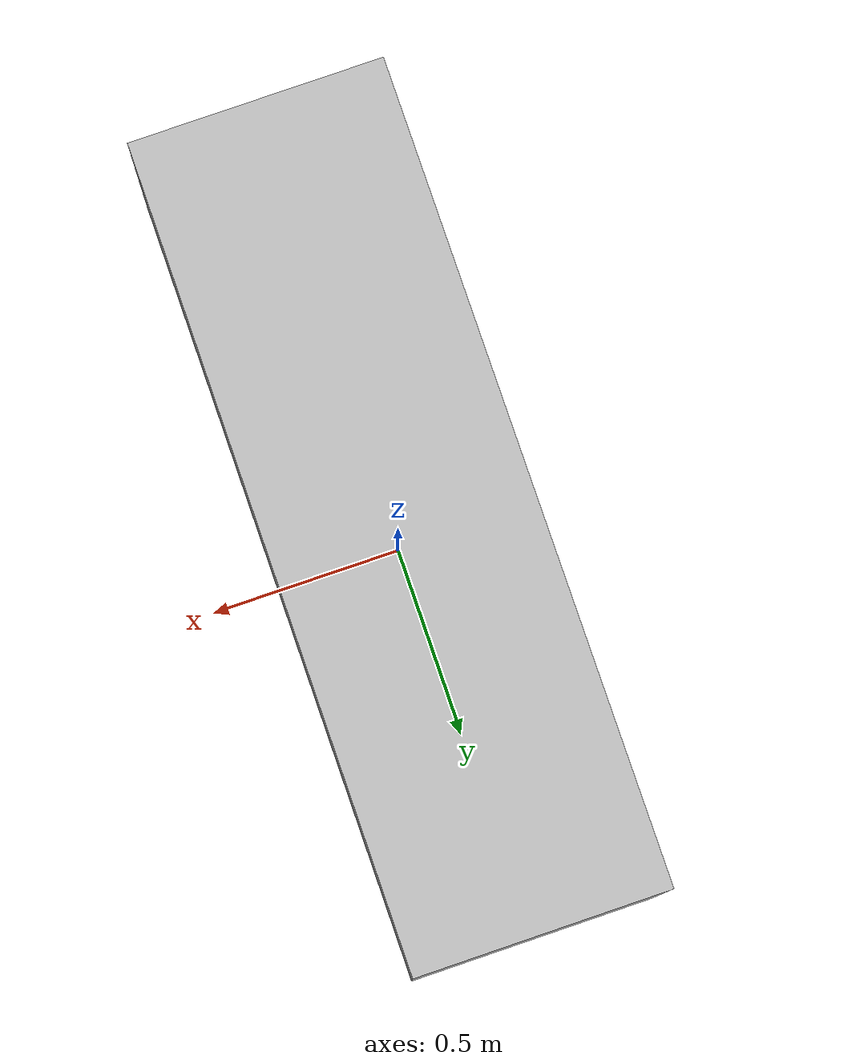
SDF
<?xml version="1.0"?>
<sdf version="1.6">
  <model name="rwc2017/kitchencounter">
    <link name="1_link">
      <collision name="1_col">
        <geometry>
          <box>
            <size>0.65 2.11 0.85</size>
          </box>
        </geometry>
      </collision>
      <visual name="1_vis">
        <geometry>
          <box>
            <size>0.65 2.11 0.85</size>
          </box>
        </geometry>
      </visual>
      <pose>0.0 0.0 0.425 0 0 0</pose>
    </link>
    <link name="on_top_of">
      <virtual_volume name="on_top_of_vv">
        <geometry>
          <box>
            <size>0.63 0.44 0.32</size>
          </box>
        </geometry>
        <pose>0.005 0.06 1.04 0 0 0</pose>
      </virtual_volume>
    </link>
    <link name="in_front_of">
      <virtual_volume name="in_front_of_vv">
        <geometry>
          <box>
            <size>0.4 0.5 0.01</size>
          </box>
        </geometry>
        <pose>0.7 0.0 0.005 0 0 0</pose>
      </virtual_volume>
    </link>
    <static>true</static>
  </model>
</sdf>
